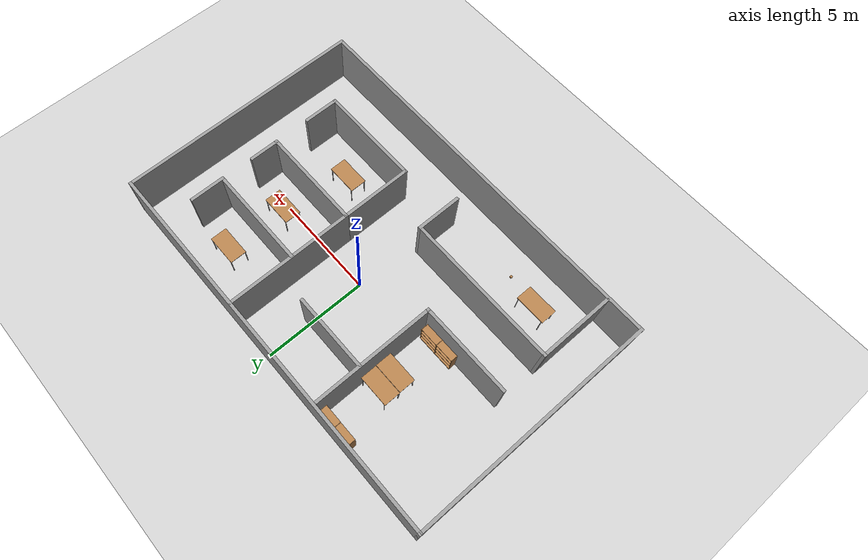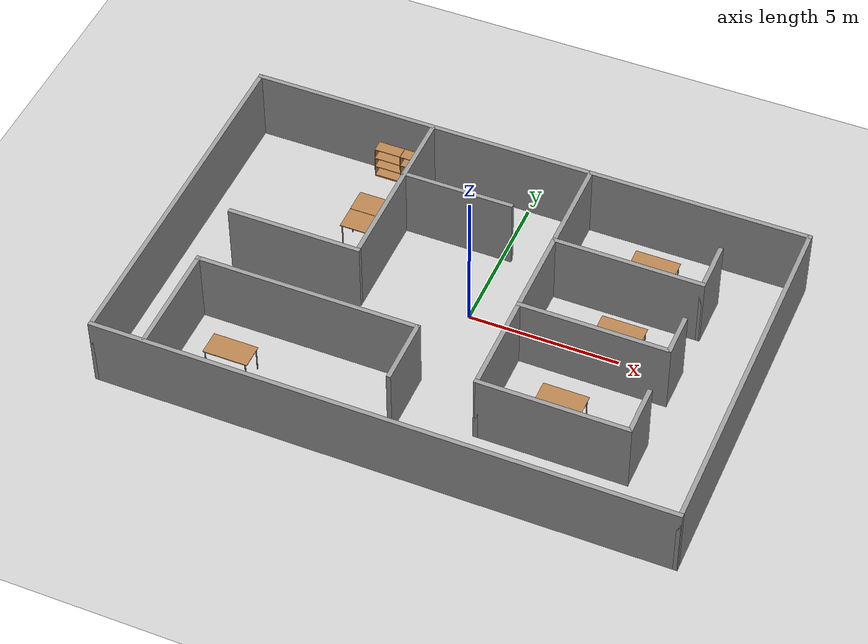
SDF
<sdf version="1.6">
 <world name="default">
  <light name="sun" type="directional">
   <pose>0 0 10 0 -0 0</pose>
   <diffuse>0.8 0.8 0.8 1</diffuse>
   <specular>0.2 0.2 0.2 1</specular>
   <attenuation>
    <range>1000</range>
    <constant>0.9</constant>
    <linear>0.01</linear>
    <quadratic>0.001</quadratic>
   </attenuation>
   <direction>-0.5 0.1 -0.9</direction>
  </light>
  <model name="ground_plane">
   <static>1</static>
   <link name="link">
    <collision name="collision">
     <geometry><plane><normal>0 0 1</normal><size>100 100</size></plane></geometry>
     <surface><friction><ode><mu>100</mu><mu2>50</mu2></ode></friction></surface>
    </collision>
    <visual name="visual">
     <cast_shadows>0</cast_shadows>
     <geometry><plane><normal>0 0 1</normal><size>100 100</size></plane></geometry>
     <material>
      <script><uri>file://media/materials/scripts/gazebo.material</uri><name>Gazebo/Grey</name></script>
     </material>
    </visual>
   </link>
  </model>
  <gravity>0 0 -9.8</gravity>
  <magnetic_field>6e-06 2.3e-05 -4.2e-05</magnetic_field>
  <atmosphere type="adiabatic"/>
  <physics name="default_physics" default="0" type="ode">
   <max_step_size>0.001</max_step_size>
   <real_time_factor>1</real_time_factor>
   <real_time_update_rate>1000</real_time_update_rate>
  </physics>
  <scene><ambient>0.4 0.4 0.4 1</ambient><background>0.7 0.7 0.7 1</background><shadows>1</shadows></scene>
  <audio><device>default</device></audio>
  <spherical_coordinates>
   <surface_model>EARTH_WGS84</surface_model>
   <latitude_deg>0</latitude_deg>
   <longitude_deg>0</longitude_deg>
   <elevation>0</elevation>
   <heading_deg>0</heading_deg>
  </spherical_coordinates>
  <model name="lab_envirenment">
   <pose>-0.120539 -0.822707 0 0 -0 0</pose>
   <link name="Wall_13">
    <collision name="Wall_13_Collision">
     <geometry><box><size>6 0.15 2.5</size></box></geometry>
     <pose>0 0 1.25 0 -0 0</pose>
    </collision>
    <visual name="Wall_13_Visual">
     <pose>0 0 1.25 0 -0 0</pose>
     <geometry><box><size>6 0.15 2.5</size></box></geometry>
     <material>
      <script><uri>file://media/materials/scripts/gazebo.material</uri><name>Gazebo/Grey</name></script>
      <ambient>1 1 1 1</ambient>
     </material>
     <meta><layer>0</layer></meta>
    </visual>
    <pose>-3.27349 2.91466 0 0 -0 -1.5708</pose>
   </link>
   <link name="Wall_14">
    <collision name="Wall_14_Collision">
     <geometry><box><size>4.5 0.15 2.5</size></box></geometry>
     <pose>0 0 1.25 0 -0 0</pose>
    </collision>
    <visual name="Wall_14_Visual">
     <pose>0 0 1.25 0 -0 0</pose>
     <geometry><box><size>4.5 0.15 2.5</size></box></geometry>
     <material>
      <script><uri>file://media/materials/scripts/gazebo.material</uri><name>Gazebo/Grey</name></script>
      <ambient>1 1 1 1</ambient>
     </material>
     <meta><layer>0</layer></meta>
    </visual>
    <pose>-5.44849 -0.010343 0 0 -0 3.14159</pose>
   </link>
   <link name="Wall_17">
    <collision name="Wall_17_Collision">
     <geometry><box><size>6.25 0.15 2.5</size></box></geometry>
     <pose>0 0 1.25 0 -0 0</pose>
    </collision>
    <visual name="Wall_17_Visual">
     <pose>0 0 1.25 0 -0 0</pose>
     <geometry><box><size>6.25 0.15 2.5</size></box></geometry>
     <material>
      <script><uri>file://media/materials/scripts/gazebo.material</uri><name>Gazebo/Grey</name></script>
      <ambient>1 1 1 1</ambient>
     </material>
     <meta><layer>0</layer></meta>
    </visual>
    <pose>2.16071 2.86033 0 0 -0 -1.5708</pose>
   </link>
   <link name="Wall_18">
    <collision name="Wall_18_Collision">
     <geometry><box><size>5 0.15 2.5</size></box></geometry>
     <pose>0 0 1.25 0 -0 0</pose>
    </collision>
    <visual name="Wall_18_Visual">
     <pose>0 0 1.25 0 -0 0</pose>
     <geometry><box><size>5 0.15 2.5</size></box></geometry>
     <material>
      <script><uri>file://media/materials/scripts/gazebo.material</uri><name>Gazebo/Grey</name></script>
      <ambient>1 1 1 1</ambient>
     </material>
     <meta><layer>0</layer></meta>
    </visual>
    <pose>4.58571 -0.189671 0 0 -0 0</pose>
   </link>
   <link name="Wall_2">
    <collision name="Wall_2_Collision">
     <geometry><box><size>19 0.15 2.5</size></box></geometry>
     <pose>0 0 1.25 0 -0 0</pose>
    </collision>
    <visual name="Wall_2_Visual">
     <pose>0 0 1.25 0 -0 0</pose>
     <geometry><box><size>19 0.15 2.5</size></box></geometry>
     <material>
      <script><uri>file://media/materials/scripts/gazebo.material</uri><name>Gazebo/Grey</name></script>
      <ambient>1 1 1 1</ambient>
     </material>
     <meta><layer>0</layer></meta>
    </visual>
    <pose>0 5.925 0 0 -0 0</pose>
   </link>
   <link name="Wall_20">
    <collision name="Wall_20_Collision">
     <geometry><box><size>3.5 0.15 2.5</size></box></geometry>
     <pose>0 0 1.25 0 -0 0</pose>
    </collision>
    <visual name="Wall_20_Visual">
     <pose>0 0 1.25 0 -0 0</pose>
     <geometry><box><size>3.5 0.15 2.5</size></box></geometry>
     <material>
      <script><uri>file://media/materials/scripts/gazebo.material</uri><name>Gazebo/Grey</name></script>
      <ambient>1 1 1 1</ambient>
     </material>
     <meta><layer>0</layer></meta>
    </visual>
    <pose>2.16071 -1.86467 0 0 -0 -1.5708</pose>
   </link>
   <link name="Wall_21">
    <collision name="Wall_21_Collision">
     <geometry><box><size>5 0.15 2.5</size></box></geometry>
     <pose>0 0 1.25 0 -0 0</pose>
    </collision>
    <visual name="Wall_21_Visual">
     <pose>0 0 1.25 0 -0 0</pose>
     <geometry><box><size>5 0.15 2.5</size></box></geometry>
     <material>
      <script><uri>file://media/materials/scripts/gazebo.material</uri><name>Gazebo/Grey</name></script>
      <ambient>1 1 1 1</ambient>
     </material>
     <meta><layer>0</layer></meta>
    </visual>
    <pose>4.58571 -3.53967 0 0 -0 0</pose>
   </link>
   <link name="Wall_23">
    <collision name="Wall_23_Collision">
     <geometry><box><size>5 0.15 2.5</size></box></geometry>
     <pose>0 0 1.25 0 -0 0</pose>
    </collision>
    <visual name="Wall_23_Visual">
     <pose>0 0 1.25 0 -0 0</pose>
     <geometry><box><size>5 0.15 2.5</size></box></geometry>
     <material>
      <script><uri>file://media/materials/scripts/gazebo.material</uri><name>Gazebo/Grey</name></script>
      <ambient>1 1 1 1</ambient>
     </material>
     <meta><layer>0</layer></meta>
    </visual>
    <pose>4.62325 2.7378 0 0 -0 0</pose>
   </link>
   <link name="Wall_27">
    <collision name="Wall_27_Collision">
     <geometry><box><size>3.75 0.15 2.5</size></box></geometry>
     <pose>0 0 1.25 0 -0 0</pose>
    </collision>
    <visual name="Wall_27_Visual">
     <pose>0 0 1.25 0 -0 0</pose>
     <geometry><box><size>3.75 0.15 2.5</size></box></geometry>
     <material>
      <script><uri>file://media/materials/scripts/gazebo.material</uri><name>Gazebo/Grey</name></script>
      <ambient>1 1 1 1</ambient>
     </material>
     <meta><layer>0</layer></meta>
    </visual>
    <pose>-7.6574 -4.03025 0 0 -0 -1.5708</pose>
   </link>
   <link name="Wall_29">
    <collision name="Wall_29_Collision">
     <geometry><box><size>7.5 0.15 2.5</size></box></geometry>
     <pose>0 0 1.25 0 -0 0</pose>
    </collision>
    <visual name="Wall_29_Visual">
     <pose>0 0 1.25 0 -0 0</pose>
     <geometry><box><size>7.5 0.15 2.5</size></box></geometry>
     <material>
      <script><uri>file://media/materials/scripts/gazebo.material</uri><name>Gazebo/Grey</name></script>
      <ambient>1 1 1 1</ambient>
     </material>
     <meta><layer>0</layer></meta>
    </visual>
    <pose>-3.9824 -2.23026 0 0 -0 0</pose>
   </link>
   <link name="Wall_30">
    <collision name="Wall_30_Collision">
     <geometry><box><size>2.25 0.15 2.5</size></box></geometry>
     <pose>0 0 1.25 0 -0 0</pose>
    </collision>
    <visual name="Wall_30_Visual">
     <pose>0 0 1.25 0 -0 0</pose>
     <geometry><box><size>2.25 0.15 2.5</size></box></geometry>
     <material>
      <script><uri>file://media/materials/scripts/gazebo.material</uri><name>Gazebo/Grey</name></script>
      <ambient>1 1 1 1</ambient>
     </material>
     <meta><layer>0</layer></meta>
    </visual>
    <pose>-0.3074 -3.28025 0 0 -0 -1.5708</pose>
   </link>
   <link name="Wall_32">
    <collision name="Wall_32_Collision">
     <geometry><box><size>1.75 0.15 2.5</size></box></geometry>
     <pose>0 0 1.25 0 -0 0</pose>
    </collision>
    <visual name="Wall_32_Visual">
     <pose>0 0 1.25 0 -0 0</pose>
     <geometry><box><size>1.75 0.15 2.5</size></box></geometry>
     <material>
      <script><uri>file://media/materials/scripts/gazebo.material</uri><name>Gazebo/Grey</name></script>
      <ambient>1 1 1 1</ambient>
     </material>
     <meta><layer>0</layer></meta>
    </visual>
    <pose>7.01071 -2.73967 0 0 -0 1.5708</pose>
   </link>
   <link name="Wall_34">
    <collision name="Wall_34_Collision">
     <geometry><box><size>1.5 0.15 2.5</size></box></geometry>
     <pose>0 0 1.25 0 -0 0</pose>
    </collision>
    <visual name="Wall_34_Visual">
     <pose>0 0 1.25 0 -0 0</pose>
     <geometry><box><size>1.5 0.15 2.5</size></box></geometry>
     <material>
      <script><uri>file://media/materials/scripts/gazebo.material</uri><name>Gazebo/Grey</name></script>
      <ambient>1 1 1 1</ambient>
     </material>
     <meta><layer>0</layer></meta>
    </visual>
    <pose>7.01071 0.485329 0 0 -0 1.5708</pose>
   </link>
   <link name="Wall_36">
    <collision name="Wall_36_Collision">
     <geometry><box><size>1.75 0.15 2.5</size></box></geometry>
     <pose>0 0 1.25 0 -0 0</pose>
    </collision>
    <visual name="Wall_36_Visual">
     <pose>0 0 1.25 0 -0 0</pose>
     <geometry><box><size>1.75 0.15 2.5</size></box></geometry>
     <material>
      <script><uri>file://media/materials/scripts/gazebo.material</uri><name>Gazebo/Grey</name></script>
      <ambient>1 1 1 1</ambient>
     </material>
     <meta><layer>0</layer></meta>
    </visual>
    <pose>7.04825 3.5378 0 0 -0 1.5708</pose>
   </link>
   <link name="Wall_38">
    <collision name="Wall_38_Collision">
     <geometry><box><size>3.75 0.15 2.5</size></box></geometry>
     <pose>0 0 1.25 0 -0 0</pose>
    </collision>
    <visual name="Wall_38_Visual">
     <pose>0 0 1.25 0 -0 0</pose>
     <geometry><box><size>3.75 0.15 2.5</size></box></geometry>
     <material>
      <script><uri>file://media/materials/scripts/gazebo.material</uri><name>Gazebo/Grey</name></script>
      <ambient>1 1 1 1</ambient>
     </material>
     <meta><layer>0</layer></meta>
    </visual>
    <pose>-1.4403 3.60452 0 0 -0 0</pose>
   </link>
   <link name="Wall_4">
    <collision name="Wall_4_Collision">
     <geometry><box><size>12 0.15 2.5</size></box></geometry>
     <pose>0 0 1.25 0 -0 0</pose>
    </collision>
    <visual name="Wall_4_Visual">
     <pose>0 0 1.25 0 -0 0</pose>
     <geometry><box><size>12 0.15 2.5</size></box></geometry>
     <material>
      <script><uri>file://media/materials/scripts/gazebo.material</uri><name>Gazebo/Grey</name></script>
      <ambient>1 1 1 1</ambient>
     </material>
     <meta><layer>0</layer></meta>
    </visual>
    <pose>9.425 0 0 0 -0 -1.5708</pose>
   </link>
   <link name="Wall_6">
    <collision name="Wall_6_Collision">
     <geometry><box><size>12 0.15 2.5</size></box></geometry>
     <pose>0 0 1.25 0 -0 0</pose>
    </collision>
    <visual name="Wall_6_Visual">
     <pose>0 0 1.25 0 -0 0</pose>
     <geometry><box><size>12 0.15 2.5</size></box></geometry>
     <material>
      <script><uri>file://media/materials/scripts/gazebo.material</uri><name>Gazebo/Grey</name></script>
      <ambient>1 1 1 1</ambient>
     </material>
     <meta><layer>0</layer></meta>
    </visual>
    <pose>-9.425 0 0 0 -0 -1.5708</pose>
   </link>
   <link name="Wall_8">
    <collision name="Wall_8_Collision">
     <geometry><box><size>19 0.15 2.5</size></box></geometry>
     <pose>0 0 1.25 0 -0 0</pose>
    </collision>
    <visual name="Wall_8_Visual">
     <pose>0 0 1.25 0 -0 0</pose>
     <geometry><box><size>19 0.15 2.5</size></box></geometry>
     <material>
      <script><uri>file://media/materials/scripts/gazebo.material</uri><name>Gazebo/Grey</name></script>
      <ambient>1 1 1 1</ambient>
     </material>
     <meta><layer>0</layer></meta>
    </visual>
    <pose>0 -5.925 0 0 -0 0</pose>
   </link>
   <static>1</static>
  </model>
  <model name="bookshelf_0">
   <static>1</static>
   <link name="link">
    <inertial><mass>1</mass></inertial>
    <collision name="back">
     <pose>0 0.005 0.6 0 -0 0</pose>
     <geometry><box><size>0.9 0.01 1.2</size></box></geometry>
    </collision>
    <visual name="visual1">
     <pose>0 0.005 0.6 0 -0 0</pose>
     <geometry><box><size>0.9 0.01 1.2</size></box></geometry>
     <material>
      <script><uri>file://media/materials/scripts/gazebo.material</uri><name>Gazebo/Wood</name></script>
     </material>
    </visual>
    <collision name="left_side">
     <pose>0.45 -0.195 0.6 0 -0 0</pose>
     <geometry><box><size>0.02 0.4 1.2</size></box></geometry>
    </collision>
    <visual name="visual2">
     <pose>0.45 -0.195 0.6 0 -0 0</pose>
     <geometry><box><size>0.02 0.4 1.2</size></box></geometry>
     <material>
      <script><uri>file://media/materials/scripts/gazebo.material</uri><name>Gazebo/Wood</name></script>
     </material>
    </visual>
    <collision name="right_side">
     <pose>-0.45 -0.195 0.6 0 -0 0</pose>
     <geometry><box><size>0.02 0.4 1.2</size></box></geometry>
    </collision>
    <visual name="visual3">
     <pose>-0.45 -0.195 0.6 0 -0 0</pose>
     <geometry><box><size>0.02 0.4 1.2</size></box></geometry>
     <material>
      <script><uri>file://media/materials/scripts/gazebo.material</uri><name>Gazebo/Wood</name></script>
     </material>
    </visual>
    <collision name="bottom">
     <pose>0 -0.195 0.03 0 -0 0</pose>
     <geometry><box><size>0.88 0.4 0.06</size></box></geometry>
    </collision>
    <visual name="visual4">
     <pose>0 -0.195 0.03 0 -0 0</pose>
     <geometry><box><size>0.88 0.4 0.06</size></box></geometry>
     <material>
      <script><uri>file://media/materials/scripts/gazebo.material</uri><name>Gazebo/Wood</name></script>
     </material>
    </visual>
    <collision name="top">
     <pose>0 -0.195 1.19 0 -0 0</pose>
     <geometry><box><size>0.88 0.4 0.02</size></box></geometry>
    </collision>
    <visual name="visual5">
     <pose>0 -0.195 1.19 0 -0 0</pose>
     <geometry><box><size>0.88 0.4 0.02</size></box></geometry>
     <material>
      <script><uri>file://media/materials/scripts/gazebo.material</uri><name>Gazebo/Wood</name></script>
     </material>
    </visual>
    <collision name="low_shelf">
     <pose>0 -0.195 0.43 0 -0 0</pose>
     <geometry><box><size>0.88 0.4 0.02</size></box></geometry>
    </collision>
    <visual name="visual6">
     <pose>0 -0.195 0.43 0 -0 0</pose>
     <geometry><box><size>0.88 0.4 0.02</size></box></geometry>
     <material>
      <script><uri>file://media/materials/scripts/gazebo.material</uri><name>Gazebo/Wood</name></script>
     </material>
    </visual>
    <collision name="high_shelf">
     <pose>0 -0.195 0.8 0 -0 0</pose>
     <geometry><box><size>0.88 0.4 0.02</size></box></geometry>
    </collision>
    <visual name="visual7">
     <pose>0 -0.195 0.8 0 -0 0</pose>
     <geometry><box><size>0.88 0.4 0.02</size></box></geometry>
     <material>
      <script><uri>file://media/materials/scripts/gazebo.material</uri><name>Gazebo/Wood</name></script>
     </material>
    </visual>
   </link>
   <pose>-4.82177 5.0036 0 0 -0 0</pose>
  </model>
  <model name="bookshelf_1">
   <static>1</static>
   <link name="link">
    <inertial><mass>1</mass></inertial>
    <collision name="back">
     <pose>0 0.005 0.6 0 -0 0</pose>
     <geometry><box><size>0.9 0.01 1.2</size></box></geometry>
    </collision>
    <visual name="visual1">
     <pose>0 0.005 0.6 0 -0 0</pose>
     <geometry><box><size>0.9 0.01 1.2</size></box></geometry>
     <material>
      <script><uri>file://media/materials/scripts/gazebo.material</uri><name>Gazebo/Wood</name></script>
     </material>
    </visual>
    <collision name="left_side">
     <pose>0.45 -0.195 0.6 0 -0 0</pose>
     <geometry><box><size>0.02 0.4 1.2</size></box></geometry>
    </collision>
    <visual name="visual2">
     <pose>0.45 -0.195 0.6 0 -0 0</pose>
     <geometry><box><size>0.02 0.4 1.2</size></box></geometry>
     <material>
      <script><uri>file://media/materials/scripts/gazebo.material</uri><name>Gazebo/Wood</name></script>
     </material>
    </visual>
    <collision name="right_side">
     <pose>-0.45 -0.195 0.6 0 -0 0</pose>
     <geometry><box><size>0.02 0.4 1.2</size></box></geometry>
    </collision>
    <visual name="visual3">
     <pose>-0.45 -0.195 0.6 0 -0 0</pose>
     <geometry><box><size>0.02 0.4 1.2</size></box></geometry>
     <material>
      <script><uri>file://media/materials/scripts/gazebo.material</uri><name>Gazebo/Wood</name></script>
     </material>
    </visual>
    <collision name="bottom">
     <pose>0 -0.195 0.03 0 -0 0</pose>
     <geometry><box><size>0.88 0.4 0.06</size></box></geometry>
    </collision>
    <visual name="visual4">
     <pose>0 -0.195 0.03 0 -0 0</pose>
     <geometry><box><size>0.88 0.4 0.06</size></box></geometry>
     <material>
      <script><uri>file://media/materials/scripts/gazebo.material</uri><name>Gazebo/Wood</name></script>
     </material>
    </visual>
    <collision name="top">
     <pose>0 -0.195 1.19 0 -0 0</pose>
     <geometry><box><size>0.88 0.4 0.02</size></box></geometry>
    </collision>
    <visual name="visual5">
     <pose>0 -0.195 1.19 0 -0 0</pose>
     <geometry><box><size>0.88 0.4 0.02</size></box></geometry>
     <material>
      <script><uri>file://media/materials/scripts/gazebo.material</uri><name>Gazebo/Wood</name></script>
     </material>
    </visual>
    <collision name="low_shelf">
     <pose>0 -0.195 0.43 0 -0 0</pose>
     <geometry><box><size>0.88 0.4 0.02</size></box></geometry>
    </collision>
    <visual name="visual6">
     <pose>0 -0.195 0.43 0 -0 0</pose>
     <geometry><box><size>0.88 0.4 0.02</size></box></geometry>
     <material>
      <script><uri>file://media/materials/scripts/gazebo.material</uri><name>Gazebo/Wood</name></script>
     </material>
    </visual>
    <collision name="high_shelf">
     <pose>0 -0.195 0.8 0 -0 0</pose>
     <geometry><box><size>0.88 0.4 0.02</size></box></geometry>
    </collision>
    <visual name="visual7">
     <pose>0 -0.195 0.8 0 -0 0</pose>
     <geometry><box><size>0.88 0.4 0.02</size></box></geometry>
     <material>
      <script><uri>file://media/materials/scripts/gazebo.material</uri><name>Gazebo/Wood</name></script>
     </material>
    </visual>
   </link>
   <pose>-3.9183 5.00015 0 0 -0 0</pose>
  </model>
  <model name="table">
   <static>1</static>
   <link name="link">
    <collision name="surface">
     <pose>0 0 1 0 -0 0</pose>
     <geometry><box><size>1.5 0.8 0.03</size></box></geometry>
     <surface><friction><ode><mu>0.6</mu><mu2>0.6</mu2></ode></friction></surface>
    </collision>
    <visual name="visual1">
     <pose>0 0 1 0 -0 0</pose>
     <geometry><box><size>1.5 0.8 0.03</size></box></geometry>
     <material>
      <script><uri>file://media/materials/scripts/gazebo.material</uri><name>Gazebo/Wood</name></script>
     </material>
    </visual>
    <collision name="front_left_leg">
     <pose>0.68 0.38 0.5 0 -0 0</pose>
     <geometry><cylinder><radius>0.02</radius><length>1</length></cylinder></geometry>
    </collision>
    <visual name="front_left_leg">
     <pose>0.68 0.38 0.5 0 -0 0</pose>
     <geometry><cylinder><radius>0.02</radius><length>1</length></cylinder></geometry>
     <material>
      <script><uri>file://media/materials/scripts/gazebo.material</uri><name>Gazebo/Grey</name></script>
     </material>
    </visual>
    <collision name="front_right_leg">
     <pose>0.68 -0.38 0.5 0 -0 0</pose>
     <geometry><cylinder><radius>0.02</radius><length>1</length></cylinder></geometry>
    </collision>
    <visual name="front_right_leg">
     <pose>0.68 -0.38 0.5 0 -0 0</pose>
     <geometry><cylinder><radius>0.02</radius><length>1</length></cylinder></geometry>
     <material>
      <script><uri>file://media/materials/scripts/gazebo.material</uri><name>Gazebo/Grey</name></script>
     </material>
    </visual>
    <collision name="back_right_leg">
     <pose>-0.68 -0.38 0.5 0 -0 0</pose>
     <geometry><cylinder><radius>0.02</radius><length>1</length></cylinder></geometry>
    </collision>
    <visual name="back_right_leg">
     <pose>-0.68 -0.38 0.5 0 -0 0</pose>
     <geometry><cylinder><radius>0.02</radius><length>1</length></cylinder></geometry>
     <material>
      <script><uri>file://media/materials/scripts/gazebo.material</uri><name>Gazebo/Grey</name></script>
     </material>
    </visual>
    <collision name="back_left_leg">
     <pose>-0.68 0.38 0.5 0 -0 0</pose>
     <geometry><cylinder><radius>0.02</radius><length>1</length></cylinder></geometry>
    </collision>
    <visual name="back_left_leg">
     <pose>-0.68 0.38 0.5 0 -0 0</pose>
     <geometry><cylinder><radius>0.02</radius><length>1</length></cylinder></geometry>
     <material>
      <script><uri>file://media/materials/scripts/gazebo.material</uri><name>Gazebo/Grey</name></script>
     </material>
    </visual>
   </link>
   <pose>-4.21934 1.60125 0 0 -0 0</pose>
  </model>
  <model name="bookshelf_2">
   <static>1</static>
   <link name="link">
    <inertial><mass>1</mass></inertial>
    <collision name="back">
     <pose>0 0.005 0.6 0 -0 0</pose>
     <geometry><box><size>0.9 0.01 1.2</size></box></geometry>
    </collision>
    <visual name="visual1">
     <pose>0 0.005 0.6 0 -0 0</pose>
     <geometry><box><size>0.9 0.01 1.2</size></box></geometry>
     <material>
      <script><uri>file://media/materials/scripts/gazebo.material</uri><name>Gazebo/Wood</name></script>
     </material>
    </visual>
    <collision name="left_side">
     <pose>0.45 -0.195 0.6 0 -0 0</pose>
     <geometry><box><size>0.02 0.4 1.2</size></box></geometry>
    </collision>
    <visual name="visual2">
     <pose>0.45 -0.195 0.6 0 -0 0</pose>
     <geometry><box><size>0.02 0.4 1.2</size></box></geometry>
     <material>
      <script><uri>file://media/materials/scripts/gazebo.material</uri><name>Gazebo/Wood</name></script>
     </material>
    </visual>
    <collision name="right_side">
     <pose>-0.45 -0.195 0.6 0 -0 0</pose>
     <geometry><box><size>0.02 0.4 1.2</size></box></geometry>
    </collision>
    <visual name="visual3">
     <pose>-0.45 -0.195 0.6 0 -0 0</pose>
     <geometry><box><size>0.02 0.4 1.2</size></box></geometry>
     <material>
      <script><uri>file://media/materials/scripts/gazebo.material</uri><name>Gazebo/Wood</name></script>
     </material>
    </visual>
    <collision name="bottom">
     <pose>0 -0.195 0.03 0 -0 0</pose>
     <geometry><box><size>0.88 0.4 0.06</size></box></geometry>
    </collision>
    <visual name="visual4">
     <pose>0 -0.195 0.03 0 -0 0</pose>
     <geometry><box><size>0.88 0.4 0.06</size></box></geometry>
     <material>
      <script><uri>file://media/materials/scripts/gazebo.material</uri><name>Gazebo/Wood</name></script>
     </material>
    </visual>
    <collision name="top">
     <pose>0 -0.195 1.19 0 -0 0</pose>
     <geometry><box><size>0.88 0.4 0.02</size></box></geometry>
    </collision>
    <visual name="visual5">
     <pose>0 -0.195 1.19 0 -0 0</pose>
     <geometry><box><size>0.88 0.4 0.02</size></box></geometry>
     <material>
      <script><uri>file://media/materials/scripts/gazebo.material</uri><name>Gazebo/Wood</name></script>
     </material>
    </visual>
    <collision name="low_shelf">
     <pose>0 -0.195 0.43 0 -0 0</pose>
     <geometry><box><size>0.88 0.4 0.02</size></box></geometry>
    </collision>
    <visual name="visual6">
     <pose>0 -0.195 0.43 0 -0 0</pose>
     <geometry><box><size>0.88 0.4 0.02</size></box></geometry>
     <material>
      <script><uri>file://media/materials/scripts/gazebo.material</uri><name>Gazebo/Wood</name></script>
     </material>
    </visual>
    <collision name="high_shelf">
     <pose>0 -0.195 0.8 0 -0 0</pose>
     <geometry><box><size>0.88 0.4 0.02</size></box></geometry>
    </collision>
    <visual name="visual7">
     <pose>0 -0.195 0.8 0 -0 0</pose>
     <geometry><box><size>0.88 0.4 0.02</size></box></geometry>
     <material>
      <script><uri>file://media/materials/scripts/gazebo.material</uri><name>Gazebo/Wood</name></script>
     </material>
    </visual>
   </link>
   <pose>-4.01773 -0.811068 0 0.008656 0.000602 3.14133</pose>
  </model>
  <model name="bookshelf_3">
   <static>1</static>
   <link name="link">
    <inertial><mass>1</mass></inertial>
    <collision name="back">
     <pose>0 0.005 0.6 0 -0 0</pose>
     <geometry><box><size>0.9 0.01 1.2</size></box></geometry>
    </collision>
    <visual name="visual1">
     <pose>0 0.005 0.6 0 -0 0</pose>
     <geometry><box><size>0.9 0.01 1.2</size></box></geometry>
     <material>
      <script><uri>file://media/materials/scripts/gazebo.material</uri><name>Gazebo/Wood</name></script>
     </material>
    </visual>
    <collision name="left_side">
     <pose>0.45 -0.195 0.6 0 -0 0</pose>
     <geometry><box><size>0.02 0.4 1.2</size></box></geometry>
    </collision>
    <visual name="visual2">
     <pose>0.45 -0.195 0.6 0 -0 0</pose>
     <geometry><box><size>0.02 0.4 1.2</size></box></geometry>
     <material>
      <script><uri>file://media/materials/scripts/gazebo.material</uri><name>Gazebo/Wood</name></script>
     </material>
    </visual>
    <collision name="right_side">
     <pose>-0.45 -0.195 0.6 0 -0 0</pose>
     <geometry><box><size>0.02 0.4 1.2</size></box></geometry>
    </collision>
    <visual name="visual3">
     <pose>-0.45 -0.195 0.6 0 -0 0</pose>
     <geometry><box><size>0.02 0.4 1.2</size></box></geometry>
     <material>
      <script><uri>file://media/materials/scripts/gazebo.material</uri><name>Gazebo/Wood</name></script>
     </material>
    </visual>
    <collision name="bottom">
     <pose>0 -0.195 0.03 0 -0 0</pose>
     <geometry><box><size>0.88 0.4 0.06</size></box></geometry>
    </collision>
    <visual name="visual4">
     <pose>0 -0.195 0.03 0 -0 0</pose>
     <geometry><box><size>0.88 0.4 0.06</size></box></geometry>
     <material>
      <script><uri>file://media/materials/scripts/gazebo.material</uri><name>Gazebo/Wood</name></script>
     </material>
    </visual>
    <collision name="top">
     <pose>0 -0.195 1.19 0 -0 0</pose>
     <geometry><box><size>0.88 0.4 0.02</size></box></geometry>
    </collision>
    <visual name="visual5">
     <pose>0 -0.195 1.19 0 -0 0</pose>
     <geometry><box><size>0.88 0.4 0.02</size></box></geometry>
     <material>
      <script><uri>file://media/materials/scripts/gazebo.material</uri><name>Gazebo/Wood</name></script>
     </material>
    </visual>
    <collision name="low_shelf">
     <pose>0 -0.195 0.43 0 -0 0</pose>
     <geometry><box><size>0.88 0.4 0.02</size></box></geometry>
    </collision>
    <visual name="visual6">
     <pose>0 -0.195 0.43 0 -0 0</pose>
     <geometry><box><size>0.88 0.4 0.02</size></box></geometry>
     <material>
      <script><uri>file://media/materials/scripts/gazebo.material</uri><name>Gazebo/Wood</name></script>
     </material>
    </visual>
    <collision name="high_shelf">
     <pose>0 -0.195 0.8 0 -0 0</pose>
     <geometry><box><size>0.88 0.4 0.02</size></box></geometry>
    </collision>
    <visual name="visual7">
     <pose>0 -0.195 0.8 0 -0 0</pose>
     <geometry><box><size>0.88 0.4 0.02</size></box></geometry>
     <material>
      <script><uri>file://media/materials/scripts/gazebo.material</uri><name>Gazebo/Wood</name></script>
     </material>
    </visual>
   </link>
   <pose>-4.92924 -0.810942 0 0 0 -3.1357</pose>
  </model>
  <model name="table_0">
   <static>1</static>
   <link name="link">
    <collision name="surface">
     <pose>0 0 1 0 -0 0</pose>
     <geometry><box><size>1.5 0.8 0.03</size></box></geometry>
     <surface><friction><ode><mu>0.6</mu><mu2>0.6</mu2></ode></friction></surface>
    </collision>
    <visual name="visual1">
     <pose>0 0 1 0 -0 0</pose>
     <geometry><box><size>1.5 0.8 0.03</size></box></geometry>
     <material>
      <script><uri>file://media/materials/scripts/gazebo.material</uri><name>Gazebo/Wood</name></script>
     </material>
    </visual>
    <collision name="front_left_leg">
     <pose>0.68 0.38 0.5 0 -0 0</pose>
     <geometry><cylinder><radius>0.02</radius><length>1</length></cylinder></geometry>
    </collision>
    <visual name="front_left_leg">
     <pose>0.68 0.38 0.5 0 -0 0</pose>
     <geometry><cylinder><radius>0.02</radius><length>1</length></cylinder></geometry>
     <material>
      <script><uri>file://media/materials/scripts/gazebo.material</uri><name>Gazebo/Grey</name></script>
     </material>
    </visual>
    <collision name="front_right_leg">
     <pose>0.68 -0.38 0.5 0 -0 0</pose>
     <geometry><cylinder><radius>0.02</radius><length>1</length></cylinder></geometry>
    </collision>
    <visual name="front_right_leg">
     <pose>0.68 -0.38 0.5 0 -0 0</pose>
     <geometry><cylinder><radius>0.02</radius><length>1</length></cylinder></geometry>
     <material>
      <script><uri>file://media/materials/scripts/gazebo.material</uri><name>Gazebo/Grey</name></script>
     </material>
    </visual>
    <collision name="back_right_leg">
     <pose>-0.68 -0.38 0.5 0 -0 0</pose>
     <geometry><cylinder><radius>0.02</radius><length>1</length></cylinder></geometry>
    </collision>
    <visual name="back_right_leg">
     <pose>-0.68 -0.38 0.5 0 -0 0</pose>
     <geometry><cylinder><radius>0.02</radius><length>1</length></cylinder></geometry>
     <material>
      <script><uri>file://media/materials/scripts/gazebo.material</uri><name>Gazebo/Grey</name></script>
     </material>
    </visual>
    <collision name="back_left_leg">
     <pose>-0.68 0.38 0.5 0 -0 0</pose>
     <geometry><cylinder><radius>0.02</radius><length>1</length></cylinder></geometry>
    </collision>
    <visual name="back_left_leg">
     <pose>-0.68 0.38 0.5 0 -0 0</pose>
     <geometry><cylinder><radius>0.02</radius><length>1</length></cylinder></geometry>
     <material>
      <script><uri>file://media/materials/scripts/gazebo.material</uri><name>Gazebo/Grey</name></script>
     </material>
    </visual>
   </link>
   <pose>-4.22922 2.41077 0.000231 0 -0 0</pose>
  </model>
  <model name="table_1">
   <static>1</static>
   <link name="link">
    <collision name="surface">
     <pose>0 0 1 0 -0 0</pose>
     <geometry><box><size>1.5 0.8 0.03</size></box></geometry>
     <surface><friction><ode><mu>0.6</mu><mu2>0.6</mu2></ode></friction></surface>
    </collision>
    <visual name="visual1">
     <pose>0 0 1 0 -0 0</pose>
     <geometry><box><size>1.5 0.8 0.03</size></box></geometry>
     <material>
      <script><uri>file://media/materials/scripts/gazebo.material</uri><name>Gazebo/Wood</name></script>
     </material>
    </visual>
    <collision name="front_left_leg">
     <pose>0.68 0.38 0.5 0 -0 0</pose>
     <geometry><cylinder><radius>0.02</radius><length>1</length></cylinder></geometry>
    </collision>
    <visual name="front_left_leg">
     <pose>0.68 0.38 0.5 0 -0 0</pose>
     <geometry><cylinder><radius>0.02</radius><length>1</length></cylinder></geometry>
     <material>
      <script><uri>file://media/materials/scripts/gazebo.material</uri><name>Gazebo/Grey</name></script>
     </material>
    </visual>
    <collision name="front_right_leg">
     <pose>0.68 -0.38 0.5 0 -0 0</pose>
     <geometry><cylinder><radius>0.02</radius><length>1</length></cylinder></geometry>
    </collision>
    <visual name="front_right_leg">
     <pose>0.68 -0.38 0.5 0 -0 0</pose>
     <geometry><cylinder><radius>0.02</radius><length>1</length></cylinder></geometry>
     <material>
      <script><uri>file://media/materials/scripts/gazebo.material</uri><name>Gazebo/Grey</name></script>
     </material>
    </visual>
    <collision name="back_right_leg">
     <pose>-0.68 -0.38 0.5 0 -0 0</pose>
     <geometry><cylinder><radius>0.02</radius><length>1</length></cylinder></geometry>
    </collision>
    <visual name="back_right_leg">
     <pose>-0.68 -0.38 0.5 0 -0 0</pose>
     <geometry><cylinder><radius>0.02</radius><length>1</length></cylinder></geometry>
     <material>
      <script><uri>file://media/materials/scripts/gazebo.material</uri><name>Gazebo/Grey</name></script>
     </material>
    </visual>
    <collision name="back_left_leg">
     <pose>-0.68 0.38 0.5 0 -0 0</pose>
     <geometry><cylinder><radius>0.02</radius><length>1</length></cylinder></geometry>
    </collision>
    <visual name="back_left_leg">
     <pose>-0.68 0.38 0.5 0 -0 0</pose>
     <geometry><cylinder><radius>0.02</radius><length>1</length></cylinder></geometry>
     <material>
      <script><uri>file://media/materials/scripts/gazebo.material</uri><name>Gazebo/Grey</name></script>
     </material>
    </visual>
   </link>
   <pose>-5.86857 -4.91451 0 0 -0 0</pose>
  </model>
  <model name="wood_cube_10cm_0_clone">
   <link name="link">
    <pose>0 0 0.05 0 -0 0</pose>
    <inertial>
     <mass>0.5167</mass>
     <inertia>
      <ixx>0.000861167</ixx>
      <ixy>0</ixy>
      <ixz>0</ixz>
      <iyy>0.000861167</iyy>
      <iyz>0</iyz>
      <izz>0.000861167</izz>
     </inertia>
    </inertial>
    <collision name="collision">
     <geometry><box><size>0.1 0.1 0.1</size></box></geometry>
     <surface>
      <contact>
       <poissons_ratio>0.347</poissons_ratio>
       <elastic_modulus>8.8e+09</elastic_modulus>
       <ode><kp>100000</kp><kd>100</kd><max_vel>100</max_vel><min_depth>0.001</min_depth></ode>
      </contact>
      <friction>
       <torsional>
        <coefficient>1</coefficient>
        <use_patch_radius>0</use_patch_radius>
        <surface_radius>0.01</surface_radius>
       </torsional>
      </friction>
     </surface>
    </collision>
    <visual name="visual">
     <geometry><box><size>0.1 0.1 0.1</size></box></geometry>
     <material>
      <script><uri>file://media/materials/scripts/gazebo.material</uri><name>Gazebo/Wood</name></script>
     </material>
    </visual>
   </link>
   <pose>-4.08101 -5.38835 -0.001013 0 -0 0</pose>
  </model>
  <model name="table_clone">
   <static>1</static>
   <link name="link">
    <collision name="surface">
     <pose>0 0 1 0 -0 0</pose>
     <geometry><box><size>1.5 0.8 0.03</size></box></geometry>
     <surface><friction><ode><mu>0.6</mu><mu2>0.6</mu2></ode></friction></surface>
    </collision>
    <visual name="visual1">
     <pose>0 0 1 0 -0 0</pose>
     <geometry><box><size>1.5 0.8 0.03</size></box></geometry>
     <material>
      <script><uri>file://media/materials/scripts/gazebo.material</uri><name>Gazebo/Wood</name></script>
     </material>
    </visual>
    <collision name="front_left_leg">
     <pose>0.68 0.38 0.5 0 -0 0</pose>
     <geometry><cylinder><radius>0.02</radius><length>1</length></cylinder></geometry>
    </collision>
    <visual name="front_left_leg">
     <pose>0.68 0.38 0.5 0 -0 0</pose>
     <geometry><cylinder><radius>0.02</radius><length>1</length></cylinder></geometry>
     <material>
      <script><uri>file://media/materials/scripts/gazebo.material</uri><name>Gazebo/Grey</name></script>
     </material>
    </visual>
    <collision name="front_right_leg">
     <pose>0.68 -0.38 0.5 0 -0 0</pose>
     <geometry><cylinder><radius>0.02</radius><length>1</length></cylinder></geometry>
    </collision>
    <visual name="front_right_leg">
     <pose>0.68 -0.38 0.5 0 -0 0</pose>
     <geometry><cylinder><radius>0.02</radius><length>1</length></cylinder></geometry>
     <material>
      <script><uri>file://media/materials/scripts/gazebo.material</uri><name>Gazebo/Grey</name></script>
     </material>
    </visual>
    <collision name="back_right_leg">
     <pose>-0.68 -0.38 0.5 0 -0 0</pose>
     <geometry><cylinder><radius>0.02</radius><length>1</length></cylinder></geometry>
    </collision>
    <visual name="back_right_leg">
     <pose>-0.68 -0.38 0.5 0 -0 0</pose>
     <geometry><cylinder><radius>0.02</radius><length>1</length></cylinder></geometry>
     <material>
      <script><uri>file://media/materials/scripts/gazebo.material</uri><name>Gazebo/Grey</name></script>
     </material>
    </visual>
    <collision name="back_left_leg">
     <pose>-0.68 0.38 0.5 0 -0 0</pose>
     <geometry><cylinder><radius>0.02</radius><length>1</length></cylinder></geometry>
    </collision>
    <visual name="back_left_leg">
     <pose>-0.68 0.38 0.5 0 -0 0</pose>
     <geometry><cylinder><radius>0.02</radius><length>1</length></cylinder></geometry>
     <material>
      <script><uri>file://media/materials/scripts/gazebo.material</uri><name>Gazebo/Grey</name></script>
     </material>
    </visual>
   </link>
   <pose>4.19792 -2.85165 0 0 -0 0</pose>
  </model>
  <model name="table_clone_0">
   <static>1</static>
   <link name="link">
    <collision name="surface">
     <pose>0 0 1 0 -0 0</pose>
     <geometry><box><size>1.5 0.8 0.03</size></box></geometry>
     <surface><friction><ode><mu>0.6</mu><mu2>0.6</mu2></ode></friction></surface>
    </collision>
    <visual name="visual1">
     <pose>0 0 1 0 -0 0</pose>
     <geometry><box><size>1.5 0.8 0.03</size></box></geometry>
     <material>
      <script><uri>file://media/materials/scripts/gazebo.material</uri><name>Gazebo/Wood</name></script>
     </material>
    </visual>
    <collision name="front_left_leg">
     <pose>0.68 0.38 0.5 0 -0 0</pose>
     <geometry><cylinder><radius>0.02</radius><length>1</length></cylinder></geometry>
    </collision>
    <visual name="front_left_leg">
     <pose>0.68 0.38 0.5 0 -0 0</pose>
     <geometry><cylinder><radius>0.02</radius><length>1</length></cylinder></geometry>
     <material>
      <script><uri>file://media/materials/scripts/gazebo.material</uri><name>Gazebo/Grey</name></script>
     </material>
    </visual>
    <collision name="front_right_leg">
     <pose>0.68 -0.38 0.5 0 -0 0</pose>
     <geometry><cylinder><radius>0.02</radius><length>1</length></cylinder></geometry>
    </collision>
    <visual name="front_right_leg">
     <pose>0.68 -0.38 0.5 0 -0 0</pose>
     <geometry><cylinder><radius>0.02</radius><length>1</length></cylinder></geometry>
     <material>
      <script><uri>file://media/materials/scripts/gazebo.material</uri><name>Gazebo/Grey</name></script>
     </material>
    </visual>
    <collision name="back_right_leg">
     <pose>-0.68 -0.38 0.5 0 -0 0</pose>
     <geometry><cylinder><radius>0.02</radius><length>1</length></cylinder></geometry>
    </collision>
    <visual name="back_right_leg">
     <pose>-0.68 -0.38 0.5 0 -0 0</pose>
     <geometry><cylinder><radius>0.02</radius><length>1</length></cylinder></geometry>
     <material>
      <script><uri>file://media/materials/scripts/gazebo.material</uri><name>Gazebo/Grey</name></script>
     </material>
    </visual>
    <collision name="back_left_leg">
     <pose>-0.68 0.38 0.5 0 -0 0</pose>
     <geometry><cylinder><radius>0.02</radius><length>1</length></cylinder></geometry>
    </collision>
    <visual name="back_left_leg">
     <pose>-0.68 0.38 0.5 0 -0 0</pose>
     <geometry><cylinder><radius>0.02</radius><length>1</length></cylinder></geometry>
     <material>
      <script><uri>file://media/materials/scripts/gazebo.material</uri><name>Gazebo/Grey</name></script>
     </material>
    </visual>
   </link>
   <pose>4.87052 0.409657 0 0 -0 0</pose>
  </model>
  <model name="table_clone_1">
   <static>1</static>
   <link name="link">
    <collision name="surface">
     <pose>0 0 1 0 -0 0</pose>
     <geometry><box><size>1.5 0.8 0.03</size></box></geometry>
     <surface><friction><ode><mu>0.6</mu><mu2>0.6</mu2></ode></friction></surface>
    </collision>
    <visual name="visual1">
     <pose>0 0 1 0 -0 0</pose>
     <geometry><box><size>1.5 0.8 0.03</size></box></geometry>
     <material>
      <script><uri>file://media/materials/scripts/gazebo.material</uri><name>Gazebo/Wood</name></script>
     </material>
    </visual>
    <collision name="front_left_leg">
     <pose>0.68 0.38 0.5 0 -0 0</pose>
     <geometry><cylinder><radius>0.02</radius><length>1</length></cylinder></geometry>
    </collision>
    <visual name="front_left_leg">
     <pose>0.68 0.38 0.5 0 -0 0</pose>
     <geometry><cylinder><radius>0.02</radius><length>1</length></cylinder></geometry>
     <material>
      <script><uri>file://media/materials/scripts/gazebo.material</uri><name>Gazebo/Grey</name></script>
     </material>
    </visual>
    <collision name="front_right_leg">
     <pose>0.68 -0.38 0.5 0 -0 0</pose>
     <geometry><cylinder><radius>0.02</radius><length>1</length></cylinder></geometry>
    </collision>
    <visual name="front_right_leg">
     <pose>0.68 -0.38 0.5 0 -0 0</pose>
     <geometry><cylinder><radius>0.02</radius><length>1</length></cylinder></geometry>
     <material>
      <script><uri>file://media/materials/scripts/gazebo.material</uri><name>Gazebo/Grey</name></script>
     </material>
    </visual>
    <collision name="back_right_leg">
     <pose>-0.68 -0.38 0.5 0 -0 0</pose>
     <geometry><cylinder><radius>0.02</radius><length>1</length></cylinder></geometry>
    </collision>
    <visual name="back_right_leg">
     <pose>-0.68 -0.38 0.5 0 -0 0</pose>
     <geometry><cylinder><radius>0.02</radius><length>1</length></cylinder></geometry>
     <material>
      <script><uri>file://media/materials/scripts/gazebo.material</uri><name>Gazebo/Grey</name></script>
     </material>
    </visual>
    <collision name="back_left_leg">
     <pose>-0.68 0.38 0.5 0 -0 0</pose>
     <geometry><cylinder><radius>0.02</radius><length>1</length></cylinder></geometry>
    </collision>
    <visual name="back_left_leg">
     <pose>-0.68 0.38 0.5 0 -0 0</pose>
     <geometry><cylinder><radius>0.02</radius><length>1</length></cylinder></geometry>
     <material>
      <script><uri>file://media/materials/scripts/gazebo.material</uri><name>Gazebo/Grey</name></script>
     </material>
    </visual>
   </link>
   <pose>4.87442 3.41842 0 0 -0 0</pose>
  </model>
 </world>
</sdf>
